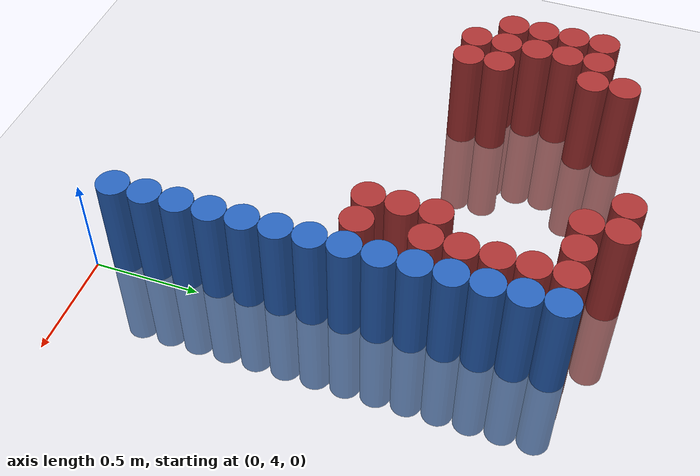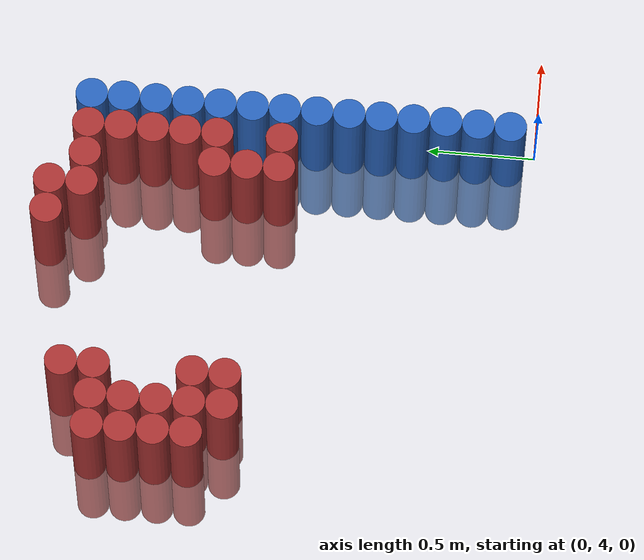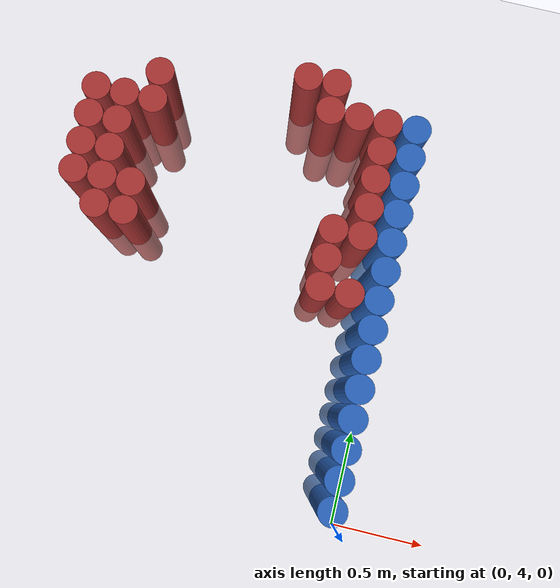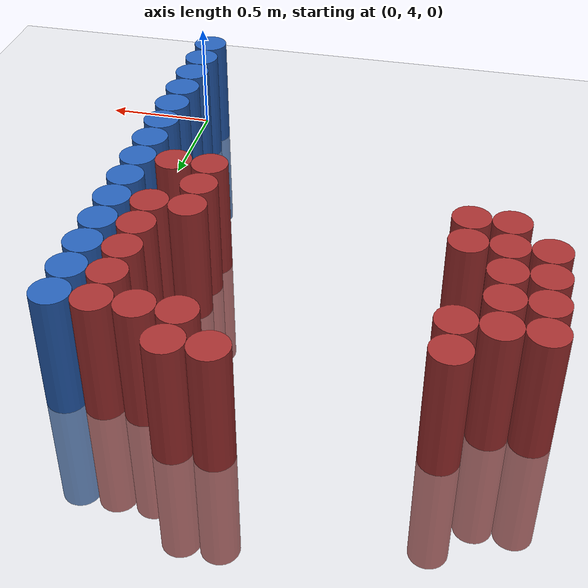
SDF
<sdf version="1.6">
 <world name="default">
  <model name="ground_plane">
   <static>1</static>
   <link name="link">
    <collision name="collision">
     <geometry><plane><normal>0 0 1</normal><size>100 100</size></plane></geometry>
     <surface><friction><ode><mu>100</mu><mu2>50</mu2></ode></friction></surface>
    </collision>
    <visual name="visual">
     <cast_shadows>0</cast_shadows>
     <geometry><plane><normal>0 0 1</normal><size>100 100</size></plane></geometry>
     <material>
      <script><uri>file://media/materials/scripts/gazebo.material</uri><name>Gazebo/Grey</name></script>
     </material>
    </visual>
   </link>
  </model>
  <model name="unit_cylinder_82">
   <static>1</static>
   <pose>-0.075000 4.125000 0.000000 0.000000 0.000000 0.000000</pose>
   <link name="link">
    <inertial>
     <mass>1</mass>
     <inertia><ixx>0.145833</ixx><ixy>0</ixy><ixz>0</ixz><iyy>0.145833</iyy><iyz>0</iyz><izz>0.125</izz></inertia>
    </inertial>
    <collision name="collision">
     <geometry><cylinder><radius>0.075000</radius><length>1</length></cylinder></geometry>
    </collision>
    <visual name="visual">
     <geometry><cylinder><radius>0.075000</radius><length>1</length></cylinder></geometry>
     <material>
      <ambient>0.152000 0.379000 0.720000 1</ambient>
      <diffuse>0.152000 0.379000 0.720000 1</diffuse>
     </material>
     <material>
      <script><name>Gazebo/Grey</name><uri>file://media/materials/scripts/gazebo.material</uri></script>
     </material>
    </visual>
    <sensor name="sensor_contact" type="contact"><contact><collision>collision</collision></contact></sensor>
   </link>
   <plugin filename="gz-sim-touchplugin-system" name="gz::sim::systems::TouchPlugin">
    <target>robot</target>
    <namespace>robot</namespace>
    <time>0.001</time>
    <enabled>true</enabled>
   </plugin>
  </model>
  <model name="unit_cylinder_84">
   <static>1</static>
   <pose>-0.075000 4.275000 0.000000 0.000000 0.000000 0.000000</pose>
   <link name="link">
    <inertial>
     <mass>1</mass>
     <inertia><ixx>0.145833</ixx><ixy>0</ixy><ixz>0</ixz><iyy>0.145833</iyy><iyz>0</iyz><izz>0.125</izz></inertia>
    </inertial>
    <collision name="collision">
     <geometry><cylinder><radius>0.075000</radius><length>1</length></cylinder></geometry>
    </collision>
    <visual name="visual">
     <geometry><cylinder><radius>0.075000</radius><length>1</length></cylinder></geometry>
     <material>
      <ambient>0.152000 0.379000 0.720000 1</ambient>
      <diffuse>0.152000 0.379000 0.720000 1</diffuse>
     </material>
     <material>
      <script><name>Gazebo/Grey</name><uri>file://media/materials/scripts/gazebo.material</uri></script>
     </material>
    </visual>
    <sensor name="sensor_contact" type="contact"><contact><collision>collision</collision></contact></sensor>
   </link>
   <plugin filename="gz-sim-touchplugin-system" name="gz::sim::systems::TouchPlugin">
    <target>robot</target>
    <namespace>robot</namespace>
    <time>0.001</time>
    <enabled>true</enabled>
   </plugin>
  </model>
  <model name="unit_cylinder_86">
   <static>1</static>
   <pose>-0.075000 4.425000 0.000000 0.000000 0.000000 0.000000</pose>
   <link name="link">
    <inertial>
     <mass>1</mass>
     <inertia><ixx>0.145833</ixx><ixy>0</ixy><ixz>0</ixz><iyy>0.145833</iyy><iyz>0</iyz><izz>0.125</izz></inertia>
    </inertial>
    <collision name="collision">
     <geometry><cylinder><radius>0.075000</radius><length>1</length></cylinder></geometry>
    </collision>
    <visual name="visual">
     <geometry><cylinder><radius>0.075000</radius><length>1</length></cylinder></geometry>
     <material>
      <ambient>0.152000 0.379000 0.720000 1</ambient>
      <diffuse>0.152000 0.379000 0.720000 1</diffuse>
     </material>
     <material>
      <script><name>Gazebo/Grey</name><uri>file://media/materials/scripts/gazebo.material</uri></script>
     </material>
    </visual>
    <sensor name="sensor_contact" type="contact"><contact><collision>collision</collision></contact></sensor>
   </link>
   <plugin filename="gz-sim-touchplugin-system" name="gz::sim::systems::TouchPlugin">
    <target>robot</target>
    <namespace>robot</namespace>
    <time>0.001</time>
    <enabled>true</enabled>
   </plugin>
  </model>
  <model name="unit_cylinder_88">
   <static>1</static>
   <pose>-0.075000 4.575000 0.000000 0.000000 0.000000 0.000000</pose>
   <link name="link">
    <inertial>
     <mass>1</mass>
     <inertia><ixx>0.145833</ixx><ixy>0</ixy><ixz>0</ixz><iyy>0.145833</iyy><iyz>0</iyz><izz>0.125</izz></inertia>
    </inertial>
    <collision name="collision">
     <geometry><cylinder><radius>0.075000</radius><length>1</length></cylinder></geometry>
    </collision>
    <visual name="visual">
     <geometry><cylinder><radius>0.075000</radius><length>1</length></cylinder></geometry>
     <material>
      <ambient>0.152000 0.379000 0.720000 1</ambient>
      <diffuse>0.152000 0.379000 0.720000 1</diffuse>
     </material>
     <material>
      <script><name>Gazebo/Grey</name><uri>file://media/materials/scripts/gazebo.material</uri></script>
     </material>
    </visual>
    <sensor name="sensor_contact" type="contact"><contact><collision>collision</collision></contact></sensor>
   </link>
   <plugin filename="gz-sim-touchplugin-system" name="gz::sim::systems::TouchPlugin">
    <target>robot</target>
    <namespace>robot</namespace>
    <time>0.001</time>
    <enabled>true</enabled>
   </plugin>
  </model>
  <model name="unit_cylinder_90">
   <static>1</static>
   <pose>-0.075000 4.725000 0.000000 0.000000 0.000000 0.000000</pose>
   <link name="link">
    <inertial>
     <mass>1</mass>
     <inertia><ixx>0.145833</ixx><ixy>0</ixy><ixz>0</ixz><iyy>0.145833</iyy><iyz>0</iyz><izz>0.125</izz></inertia>
    </inertial>
    <collision name="collision">
     <geometry><cylinder><radius>0.075000</radius><length>1</length></cylinder></geometry>
    </collision>
    <visual name="visual">
     <geometry><cylinder><radius>0.075000</radius><length>1</length></cylinder></geometry>
     <material>
      <ambient>0.152000 0.379000 0.720000 1</ambient>
      <diffuse>0.152000 0.379000 0.720000 1</diffuse>
     </material>
     <material>
      <script><name>Gazebo/Grey</name><uri>file://media/materials/scripts/gazebo.material</uri></script>
     </material>
    </visual>
    <sensor name="sensor_contact" type="contact"><contact><collision>collision</collision></contact></sensor>
   </link>
   <plugin filename="gz-sim-touchplugin-system" name="gz::sim::systems::TouchPlugin">
    <target>robot</target>
    <namespace>robot</namespace>
    <time>0.001</time>
    <enabled>true</enabled>
   </plugin>
  </model>
  <model name="unit_cylinder_92">
   <static>1</static>
   <pose>-0.075000 4.875000 0.000000 0.000000 0.000000 0.000000</pose>
   <link name="link">
    <inertial>
     <mass>1</mass>
     <inertia><ixx>0.145833</ixx><ixy>0</ixy><ixz>0</ixz><iyy>0.145833</iyy><iyz>0</iyz><izz>0.125</izz></inertia>
    </inertial>
    <collision name="collision">
     <geometry><cylinder><radius>0.075000</radius><length>1</length></cylinder></geometry>
    </collision>
    <visual name="visual">
     <geometry><cylinder><radius>0.075000</radius><length>1</length></cylinder></geometry>
     <material>
      <ambient>0.152000 0.379000 0.720000 1</ambient>
      <diffuse>0.152000 0.379000 0.720000 1</diffuse>
     </material>
     <material>
      <script><name>Gazebo/Grey</name><uri>file://media/materials/scripts/gazebo.material</uri></script>
     </material>
    </visual>
    <sensor name="sensor_contact" type="contact"><contact><collision>collision</collision></contact></sensor>
   </link>
   <plugin filename="gz-sim-touchplugin-system" name="gz::sim::systems::TouchPlugin">
    <target>robot</target>
    <namespace>robot</namespace>
    <time>0.001</time>
    <enabled>true</enabled>
   </plugin>
  </model>
  <model name="unit_cylinder_94">
   <static>1</static>
   <pose>-0.075000 5.025000 0.000000 0.000000 0.000000 0.000000</pose>
   <link name="link">
    <inertial>
     <mass>1</mass>
     <inertia><ixx>0.145833</ixx><ixy>0</ixy><ixz>0</ixz><iyy>0.145833</iyy><iyz>0</iyz><izz>0.125</izz></inertia>
    </inertial>
    <collision name="collision">
     <geometry><cylinder><radius>0.075000</radius><length>1</length></cylinder></geometry>
    </collision>
    <visual name="visual">
     <geometry><cylinder><radius>0.075000</radius><length>1</length></cylinder></geometry>
     <material>
      <ambient>0.152000 0.379000 0.720000 1</ambient>
      <diffuse>0.152000 0.379000 0.720000 1</diffuse>
     </material>
     <material>
      <script><name>Gazebo/Grey</name><uri>file://media/materials/scripts/gazebo.material</uri></script>
     </material>
    </visual>
    <sensor name="sensor_contact" type="contact"><contact><collision>collision</collision></contact></sensor>
   </link>
   <plugin filename="gz-sim-touchplugin-system" name="gz::sim::systems::TouchPlugin">
    <target>robot</target>
    <namespace>robot</namespace>
    <time>0.001</time>
    <enabled>true</enabled>
   </plugin>
  </model>
  <model name="unit_cylinder_231">
   <static>1</static>
   <pose>-1.725000 5.475000 0.000000 0.000000 0.000000 0.000000</pose>
   <link name="link">
    <inertial>
     <mass>1</mass>
     <inertia><ixx>0.145833</ixx><ixy>0</ixy><ixz>0</ixz><iyy>0.145833</iyy><iyz>0</iyz><izz>0.125</izz></inertia>
    </inertial>
    <collision name="collision">
     <geometry><cylinder><radius>0.075000</radius><length>1</length></cylinder></geometry>
    </collision>
    <visual name="visual">
     <geometry><cylinder><radius>0.075000</radius><length>1</length></cylinder></geometry>
     <material>
      <ambient>0.648000 0.192000 0.192000 1</ambient>
      <diffuse>0.648000 0.192000 0.192000 1</diffuse>
     </material>
     <material>
      <script><name>Gazebo/Grey</name><uri>file://media/materials/scripts/gazebo.material</uri></script>
     </material>
    </visual>
    <sensor name="sensor_contact" type="contact"><contact><collision>collision</collision></contact></sensor>
   </link>
   <plugin filename="gz-sim-touchplugin-system" name="gz::sim::systems::TouchPlugin">
    <target>robot</target>
    <namespace>robot</namespace>
    <time>0.001</time>
    <enabled>true</enabled>
   </plugin>
  </model>
  <model name="unit_cylinder_232">
   <static>1</static>
   <pose>-1.725000 5.625000 0.000000 0.000000 0.000000 0.000000</pose>
   <link name="link">
    <inertial>
     <mass>1</mass>
     <inertia><ixx>0.145833</ixx><ixy>0</ixy><ixz>0</ixz><iyy>0.145833</iyy><iyz>0</iyz><izz>0.125</izz></inertia>
    </inertial>
    <collision name="collision">
     <geometry><cylinder><radius>0.075000</radius><length>1</length></cylinder></geometry>
    </collision>
    <visual name="visual">
     <geometry><cylinder><radius>0.075000</radius><length>1</length></cylinder></geometry>
     <material>
      <ambient>0.648000 0.192000 0.192000 1</ambient>
      <diffuse>0.648000 0.192000 0.192000 1</diffuse>
     </material>
     <material>
      <script><name>Gazebo/Grey</name><uri>file://media/materials/scripts/gazebo.material</uri></script>
     </material>
    </visual>
    <sensor name="sensor_contact" type="contact"><contact><collision>collision</collision></contact></sensor>
   </link>
   <plugin filename="gz-sim-touchplugin-system" name="gz::sim::systems::TouchPlugin">
    <target>robot</target>
    <namespace>robot</namespace>
    <time>0.001</time>
    <enabled>true</enabled>
   </plugin>
  </model>
  <model name="unit_cylinder_233">
   <static>1</static>
   <pose>-1.725000 5.775000 0.000000 0.000000 0.000000 0.000000</pose>
   <link name="link">
    <inertial>
     <mass>1</mass>
     <inertia><ixx>0.145833</ixx><ixy>0</ixy><ixz>0</ixz><iyy>0.145833</iyy><iyz>0</iyz><izz>0.125</izz></inertia>
    </inertial>
    <collision name="collision">
     <geometry><cylinder><radius>0.075000</radius><length>1</length></cylinder></geometry>
    </collision>
    <visual name="visual">
     <geometry><cylinder><radius>0.075000</radius><length>1</length></cylinder></geometry>
     <material>
      <ambient>0.648000 0.192000 0.192000 1</ambient>
      <diffuse>0.648000 0.192000 0.192000 1</diffuse>
     </material>
     <material>
      <script><name>Gazebo/Grey</name><uri>file://media/materials/scripts/gazebo.material</uri></script>
     </material>
    </visual>
    <sensor name="sensor_contact" type="contact"><contact><collision>collision</collision></contact></sensor>
   </link>
   <plugin filename="gz-sim-touchplugin-system" name="gz::sim::systems::TouchPlugin">
    <target>robot</target>
    <namespace>robot</namespace>
    <time>0.001</time>
    <enabled>true</enabled>
   </plugin>
  </model>
  <model name="unit_cylinder_234">
   <static>1</static>
   <pose>-1.725000 5.925000 0.000000 0.000000 0.000000 0.000000</pose>
   <link name="link">
    <inertial>
     <mass>1</mass>
     <inertia><ixx>0.145833</ixx><ixy>0</ixy><ixz>0</ixz><iyy>0.145833</iyy><iyz>0</iyz><izz>0.125</izz></inertia>
    </inertial>
    <collision name="collision">
     <geometry><cylinder><radius>0.075000</radius><length>1</length></cylinder></geometry>
    </collision>
    <visual name="visual">
     <geometry><cylinder><radius>0.075000</radius><length>1</length></cylinder></geometry>
     <material>
      <ambient>0.648000 0.192000 0.192000 1</ambient>
      <diffuse>0.648000 0.192000 0.192000 1</diffuse>
     </material>
     <material>
      <script><name>Gazebo/Grey</name><uri>file://media/materials/scripts/gazebo.material</uri></script>
     </material>
    </visual>
    <sensor name="sensor_contact" type="contact"><contact><collision>collision</collision></contact></sensor>
   </link>
   <plugin filename="gz-sim-touchplugin-system" name="gz::sim::systems::TouchPlugin">
    <target>robot</target>
    <namespace>robot</namespace>
    <time>0.001</time>
    <enabled>true</enabled>
   </plugin>
  </model>
  <model name="unit_cylinder_241">
   <static>1</static>
   <pose>-1.575000 5.325000 0.000000 0.000000 0.000000 0.000000</pose>
   <link name="link">
    <inertial>
     <mass>1</mass>
     <inertia><ixx>0.145833</ixx><ixy>0</ixy><ixz>0</ixz><iyy>0.145833</iyy><iyz>0</iyz><izz>0.125</izz></inertia>
    </inertial>
    <collision name="collision">
     <geometry><cylinder><radius>0.075000</radius><length>1</length></cylinder></geometry>
    </collision>
    <visual name="visual">
     <geometry><cylinder><radius>0.075000</radius><length>1</length></cylinder></geometry>
     <material>
      <ambient>0.648000 0.192000 0.192000 1</ambient>
      <diffuse>0.648000 0.192000 0.192000 1</diffuse>
     </material>
     <material>
      <script><name>Gazebo/Grey</name><uri>file://media/materials/scripts/gazebo.material</uri></script>
     </material>
    </visual>
    <sensor name="sensor_contact" type="contact"><contact><collision>collision</collision></contact></sensor>
   </link>
   <plugin filename="gz-sim-touchplugin-system" name="gz::sim::systems::TouchPlugin">
    <target>robot</target>
    <namespace>robot</namespace>
    <time>0.001</time>
    <enabled>true</enabled>
   </plugin>
  </model>
  <model name="unit_cylinder_242">
   <static>1</static>
   <pose>-1.575000 5.475000 0.000000 0.000000 0.000000 0.000000</pose>
   <link name="link">
    <inertial>
     <mass>1</mass>
     <inertia><ixx>0.145833</ixx><ixy>0</ixy><ixz>0</ixz><iyy>0.145833</iyy><iyz>0</iyz><izz>0.125</izz></inertia>
    </inertial>
    <collision name="collision">
     <geometry><cylinder><radius>0.075000</radius><length>1</length></cylinder></geometry>
    </collision>
    <visual name="visual">
     <geometry><cylinder><radius>0.075000</radius><length>1</length></cylinder></geometry>
     <material>
      <ambient>0.648000 0.192000 0.192000 1</ambient>
      <diffuse>0.648000 0.192000 0.192000 1</diffuse>
     </material>
     <material>
      <script><name>Gazebo/Grey</name><uri>file://media/materials/scripts/gazebo.material</uri></script>
     </material>
    </visual>
    <sensor name="sensor_contact" type="contact"><contact><collision>collision</collision></contact></sensor>
   </link>
   <plugin filename="gz-sim-touchplugin-system" name="gz::sim::systems::TouchPlugin">
    <target>robot</target>
    <namespace>robot</namespace>
    <time>0.001</time>
    <enabled>true</enabled>
   </plugin>
  </model>
  <model name="unit_cylinder_243">
   <static>1</static>
   <pose>-1.575000 5.625000 0.000000 0.000000 0.000000 0.000000</pose>
   <link name="link">
    <inertial>
     <mass>1</mass>
     <inertia><ixx>0.145833</ixx><ixy>0</ixy><ixz>0</ixz><iyy>0.145833</iyy><iyz>0</iyz><izz>0.125</izz></inertia>
    </inertial>
    <collision name="collision">
     <geometry><cylinder><radius>0.075000</radius><length>1</length></cylinder></geometry>
    </collision>
    <visual name="visual">
     <geometry><cylinder><radius>0.075000</radius><length>1</length></cylinder></geometry>
     <material>
      <ambient>0.648000 0.192000 0.192000 1</ambient>
      <diffuse>0.648000 0.192000 0.192000 1</diffuse>
     </material>
     <material>
      <script><name>Gazebo/Grey</name><uri>file://media/materials/scripts/gazebo.material</uri></script>
     </material>
    </visual>
    <sensor name="sensor_contact" type="contact"><contact><collision>collision</collision></contact></sensor>
   </link>
   <plugin filename="gz-sim-touchplugin-system" name="gz::sim::systems::TouchPlugin">
    <target>robot</target>
    <namespace>robot</namespace>
    <time>0.001</time>
    <enabled>true</enabled>
   </plugin>
  </model>
  <model name="unit_cylinder_244">
   <static>1</static>
   <pose>-1.575000 5.775000 0.000000 0.000000 0.000000 0.000000</pose>
   <link name="link">
    <inertial>
     <mass>1</mass>
     <inertia><ixx>0.145833</ixx><ixy>0</ixy><ixz>0</ixz><iyy>0.145833</iyy><iyz>0</iyz><izz>0.125</izz></inertia>
    </inertial>
    <collision name="collision">
     <geometry><cylinder><radius>0.075000</radius><length>1</length></cylinder></geometry>
    </collision>
    <visual name="visual">
     <geometry><cylinder><radius>0.075000</radius><length>1</length></cylinder></geometry>
     <material>
      <ambient>0.648000 0.192000 0.192000 1</ambient>
      <diffuse>0.648000 0.192000 0.192000 1</diffuse>
     </material>
     <material>
      <script><name>Gazebo/Grey</name><uri>file://media/materials/scripts/gazebo.material</uri></script>
     </material>
    </visual>
    <sensor name="sensor_contact" type="contact"><contact><collision>collision</collision></contact></sensor>
   </link>
   <plugin filename="gz-sim-touchplugin-system" name="gz::sim::systems::TouchPlugin">
    <target>robot</target>
    <namespace>robot</namespace>
    <time>0.001</time>
    <enabled>true</enabled>
   </plugin>
  </model>
  <model name="unit_cylinder_245">
   <static>1</static>
   <pose>-1.575000 5.925000 0.000000 0.000000 0.000000 0.000000</pose>
   <link name="link">
    <inertial>
     <mass>1</mass>
     <inertia><ixx>0.145833</ixx><ixy>0</ixy><ixz>0</ixz><iyy>0.145833</iyy><iyz>0</iyz><izz>0.125</izz></inertia>
    </inertial>
    <collision name="collision">
     <geometry><cylinder><radius>0.075000</radius><length>1</length></cylinder></geometry>
    </collision>
    <visual name="visual">
     <geometry><cylinder><radius>0.075000</radius><length>1</length></cylinder></geometry>
     <material>
      <ambient>0.648000 0.192000 0.192000 1</ambient>
      <diffuse>0.648000 0.192000 0.192000 1</diffuse>
     </material>
     <material>
      <script><name>Gazebo/Grey</name><uri>file://media/materials/scripts/gazebo.material</uri></script>
     </material>
    </visual>
    <sensor name="sensor_contact" type="contact"><contact><collision>collision</collision></contact></sensor>
   </link>
   <plugin filename="gz-sim-touchplugin-system" name="gz::sim::systems::TouchPlugin">
    <target>robot</target>
    <namespace>robot</namespace>
    <time>0.001</time>
    <enabled>true</enabled>
   </plugin>
  </model>
  <model name="unit_cylinder_252">
   <static>1</static>
   <pose>-1.425000 5.325000 0.000000 0.000000 0.000000 0.000000</pose>
   <link name="link">
    <inertial>
     <mass>1</mass>
     <inertia><ixx>0.145833</ixx><ixy>0</ixy><ixz>0</ixz><iyy>0.145833</iyy><iyz>0</iyz><izz>0.125</izz></inertia>
    </inertial>
    <collision name="collision">
     <geometry><cylinder><radius>0.075000</radius><length>1</length></cylinder></geometry>
    </collision>
    <visual name="visual">
     <geometry><cylinder><radius>0.075000</radius><length>1</length></cylinder></geometry>
     <material>
      <ambient>0.648000 0.192000 0.192000 1</ambient>
      <diffuse>0.648000 0.192000 0.192000 1</diffuse>
     </material>
     <material>
      <script><name>Gazebo/Grey</name><uri>file://media/materials/scripts/gazebo.material</uri></script>
     </material>
    </visual>
    <sensor name="sensor_contact" type="contact"><contact><collision>collision</collision></contact></sensor>
   </link>
   <plugin filename="gz-sim-touchplugin-system" name="gz::sim::systems::TouchPlugin">
    <target>robot</target>
    <namespace>robot</namespace>
    <time>0.001</time>
    <enabled>true</enabled>
   </plugin>
  </model>
  <model name="unit_cylinder_253">
   <static>1</static>
   <pose>-1.425000 5.475000 0.000000 0.000000 0.000000 0.000000</pose>
   <link name="link">
    <inertial>
     <mass>1</mass>
     <inertia><ixx>0.145833</ixx><ixy>0</ixy><ixz>0</ixz><iyy>0.145833</iyy><iyz>0</iyz><izz>0.125</izz></inertia>
    </inertial>
    <collision name="collision">
     <geometry><cylinder><radius>0.075000</radius><length>1</length></cylinder></geometry>
    </collision>
    <visual name="visual">
     <geometry><cylinder><radius>0.075000</radius><length>1</length></cylinder></geometry>
     <material>
      <ambient>0.648000 0.192000 0.192000 1</ambient>
      <diffuse>0.648000 0.192000 0.192000 1</diffuse>
     </material>
     <material>
      <script><name>Gazebo/Grey</name><uri>file://media/materials/scripts/gazebo.material</uri></script>
     </material>
    </visual>
    <sensor name="sensor_contact" type="contact"><contact><collision>collision</collision></contact></sensor>
   </link>
   <plugin filename="gz-sim-touchplugin-system" name="gz::sim::systems::TouchPlugin">
    <target>robot</target>
    <namespace>robot</namespace>
    <time>0.001</time>
    <enabled>true</enabled>
   </plugin>
  </model>
  <model name="unit_cylinder_254">
   <static>1</static>
   <pose>-1.425000 5.925000 0.000000 0.000000 0.000000 0.000000</pose>
   <link name="link">
    <inertial>
     <mass>1</mass>
     <inertia><ixx>0.145833</ixx><ixy>0</ixy><ixz>0</ixz><iyy>0.145833</iyy><iyz>0</iyz><izz>0.125</izz></inertia>
    </inertial>
    <collision name="collision">
     <geometry><cylinder><radius>0.075000</radius><length>1</length></cylinder></geometry>
    </collision>
    <visual name="visual">
     <geometry><cylinder><radius>0.075000</radius><length>1</length></cylinder></geometry>
     <material>
      <ambient>0.648000 0.192000 0.192000 1</ambient>
      <diffuse>0.648000 0.192000 0.192000 1</diffuse>
     </material>
     <material>
      <script><name>Gazebo/Grey</name><uri>file://media/materials/scripts/gazebo.material</uri></script>
     </material>
    </visual>
    <sensor name="sensor_contact" type="contact"><contact><collision>collision</collision></contact></sensor>
   </link>
   <plugin filename="gz-sim-touchplugin-system" name="gz::sim::systems::TouchPlugin">
    <target>robot</target>
    <namespace>robot</namespace>
    <time>0.001</time>
    <enabled>true</enabled>
   </plugin>
  </model>
  <model name="unit_cylinder_255">
   <static>1</static>
   <pose>-1.425000 6.075000 0.000000 0.000000 0.000000 0.000000</pose>
   <link name="link">
    <inertial>
     <mass>1</mass>
     <inertia><ixx>0.145833</ixx><ixy>0</ixy><ixz>0</ixz><iyy>0.145833</iyy><iyz>0</iyz><izz>0.125</izz></inertia>
    </inertial>
    <collision name="collision">
     <geometry><cylinder><radius>0.075000</radius><length>1</length></cylinder></geometry>
    </collision>
    <visual name="visual">
     <geometry><cylinder><radius>0.075000</radius><length>1</length></cylinder></geometry>
     <material>
      <ambient>0.648000 0.192000 0.192000 1</ambient>
      <diffuse>0.648000 0.192000 0.192000 1</diffuse>
     </material>
     <material>
      <script><name>Gazebo/Grey</name><uri>file://media/materials/scripts/gazebo.material</uri></script>
     </material>
    </visual>
    <sensor name="sensor_contact" type="contact"><contact><collision>collision</collision></contact></sensor>
   </link>
   <plugin filename="gz-sim-touchplugin-system" name="gz::sim::systems::TouchPlugin">
    <target>robot</target>
    <namespace>robot</namespace>
    <time>0.001</time>
    <enabled>true</enabled>
   </plugin>
  </model>
  <model name="unit_cylinder_282">
   <static>1</static>
   <pose>-0.675000 6.225000 0.000000 0.000000 0.000000 0.000000</pose>
   <link name="link">
    <inertial>
     <mass>1</mass>
     <inertia><ixx>0.145833</ixx><ixy>0</ixy><ixz>0</ixz><iyy>0.145833</iyy><iyz>0</iyz><izz>0.125</izz></inertia>
    </inertial>
    <collision name="collision">
     <geometry><cylinder><radius>0.075000</radius><length>1</length></cylinder></geometry>
    </collision>
    <visual name="visual">
     <geometry><cylinder><radius>0.075000</radius><length>1</length></cylinder></geometry>
     <material>
      <ambient>0.648000 0.192000 0.192000 1</ambient>
      <diffuse>0.648000 0.192000 0.192000 1</diffuse>
     </material>
     <material>
      <script><name>Gazebo/Grey</name><uri>file://media/materials/scripts/gazebo.material</uri></script>
     </material>
    </visual>
    <sensor name="sensor_contact" type="contact"><contact><collision>collision</collision></contact></sensor>
   </link>
   <plugin filename="gz-sim-touchplugin-system" name="gz::sim::systems::TouchPlugin">
    <target>robot</target>
    <namespace>robot</namespace>
    <time>0.001</time>
    <enabled>true</enabled>
   </plugin>
  </model>
  <model name="unit_cylinder_293">
   <static>1</static>
   <pose>-0.525000 6.075000 0.000000 0.000000 0.000000 0.000000</pose>
   <link name="link">
    <inertial>
     <mass>1</mass>
     <inertia><ixx>0.145833</ixx><ixy>0</ixy><ixz>0</ixz><iyy>0.145833</iyy><iyz>0</iyz><izz>0.125</izz></inertia>
    </inertial>
    <collision name="collision">
     <geometry><cylinder><radius>0.075000</radius><length>1</length></cylinder></geometry>
    </collision>
    <visual name="visual">
     <geometry><cylinder><radius>0.075000</radius><length>1</length></cylinder></geometry>
     <material>
      <ambient>0.648000 0.192000 0.192000 1</ambient>
      <diffuse>0.648000 0.192000 0.192000 1</diffuse>
     </material>
     <material>
      <script><name>Gazebo/Grey</name><uri>file://media/materials/scripts/gazebo.material</uri></script>
     </material>
    </visual>
    <sensor name="sensor_contact" type="contact"><contact><collision>collision</collision></contact></sensor>
   </link>
   <plugin filename="gz-sim-touchplugin-system" name="gz::sim::systems::TouchPlugin">
    <target>robot</target>
    <namespace>robot</namespace>
    <time>0.001</time>
    <enabled>true</enabled>
   </plugin>
  </model>
  <model name="unit_cylinder_294">
   <static>1</static>
   <pose>-0.525000 6.225000 0.000000 0.000000 0.000000 0.000000</pose>
   <link name="link">
    <inertial>
     <mass>1</mass>
     <inertia><ixx>0.145833</ixx><ixy>0</ixy><ixz>0</ixz><iyy>0.145833</iyy><iyz>0</iyz><izz>0.125</izz></inertia>
    </inertial>
    <collision name="collision">
     <geometry><cylinder><radius>0.075000</radius><length>1</length></cylinder></geometry>
    </collision>
    <visual name="visual">
     <geometry><cylinder><radius>0.075000</radius><length>1</length></cylinder></geometry>
     <material>
      <ambient>0.648000 0.192000 0.192000 1</ambient>
      <diffuse>0.648000 0.192000 0.192000 1</diffuse>
     </material>
     <material>
      <script><name>Gazebo/Grey</name><uri>file://media/materials/scripts/gazebo.material</uri></script>
     </material>
    </visual>
    <sensor name="sensor_contact" type="contact"><contact><collision>collision</collision></contact></sensor>
   </link>
   <plugin filename="gz-sim-touchplugin-system" name="gz::sim::systems::TouchPlugin">
    <target>robot</target>
    <namespace>robot</namespace>
    <time>0.001</time>
    <enabled>true</enabled>
   </plugin>
  </model>
  <model name="unit_cylinder_305">
   <static>1</static>
   <pose>-0.375000 5.175000 0.000000 0.000000 0.000000 0.000000</pose>
   <link name="link">
    <inertial>
     <mass>1</mass>
     <inertia><ixx>0.145833</ixx><ixy>0</ixy><ixz>0</ixz><iyy>0.145833</iyy><iyz>0</iyz><izz>0.125</izz></inertia>
    </inertial>
    <collision name="collision">
     <geometry><cylinder><radius>0.075000</radius><length>1</length></cylinder></geometry>
    </collision>
    <visual name="visual">
     <geometry><cylinder><radius>0.075000</radius><length>1</length></cylinder></geometry>
     <material>
      <ambient>0.648000 0.192000 0.192000 1</ambient>
      <diffuse>0.648000 0.192000 0.192000 1</diffuse>
     </material>
     <material>
      <script><name>Gazebo/Grey</name><uri>file://media/materials/scripts/gazebo.material</uri></script>
     </material>
    </visual>
    <sensor name="sensor_contact" type="contact"><contact><collision>collision</collision></contact></sensor>
   </link>
   <plugin filename="gz-sim-touchplugin-system" name="gz::sim::systems::TouchPlugin">
    <target>robot</target>
    <namespace>robot</namespace>
    <time>0.001</time>
    <enabled>true</enabled>
   </plugin>
  </model>
  <model name="unit_cylinder_306">
   <static>1</static>
   <pose>-0.375000 5.325000 0.000000 0.000000 0.000000 0.000000</pose>
   <link name="link">
    <inertial>
     <mass>1</mass>
     <inertia><ixx>0.145833</ixx><ixy>0</ixy><ixz>0</ixz><iyy>0.145833</iyy><iyz>0</iyz><izz>0.125</izz></inertia>
    </inertial>
    <collision name="collision">
     <geometry><cylinder><radius>0.075000</radius><length>1</length></cylinder></geometry>
    </collision>
    <visual name="visual">
     <geometry><cylinder><radius>0.075000</radius><length>1</length></cylinder></geometry>
     <material>
      <ambient>0.648000 0.192000 0.192000 1</ambient>
      <diffuse>0.648000 0.192000 0.192000 1</diffuse>
     </material>
     <material>
      <script><name>Gazebo/Grey</name><uri>file://media/materials/scripts/gazebo.material</uri></script>
     </material>
    </visual>
    <sensor name="sensor_contact" type="contact"><contact><collision>collision</collision></contact></sensor>
   </link>
   <plugin filename="gz-sim-touchplugin-system" name="gz::sim::systems::TouchPlugin">
    <target>robot</target>
    <namespace>robot</namespace>
    <time>0.001</time>
    <enabled>true</enabled>
   </plugin>
  </model>
  <model name="unit_cylinder_307">
   <static>1</static>
   <pose>-0.375000 5.475000 0.000000 0.000000 0.000000 0.000000</pose>
   <link name="link">
    <inertial>
     <mass>1</mass>
     <inertia><ixx>0.145833</ixx><ixy>0</ixy><ixz>0</ixz><iyy>0.145833</iyy><iyz>0</iyz><izz>0.125</izz></inertia>
    </inertial>
    <collision name="collision">
     <geometry><cylinder><radius>0.075000</radius><length>1</length></cylinder></geometry>
    </collision>
    <visual name="visual">
     <geometry><cylinder><radius>0.075000</radius><length>1</length></cylinder></geometry>
     <material>
      <ambient>0.648000 0.192000 0.192000 1</ambient>
      <diffuse>0.648000 0.192000 0.192000 1</diffuse>
     </material>
     <material>
      <script><name>Gazebo/Grey</name><uri>file://media/materials/scripts/gazebo.material</uri></script>
     </material>
    </visual>
    <sensor name="sensor_contact" type="contact"><contact><collision>collision</collision></contact></sensor>
   </link>
   <plugin filename="gz-sim-touchplugin-system" name="gz::sim::systems::TouchPlugin">
    <target>robot</target>
    <namespace>robot</namespace>
    <time>0.001</time>
    <enabled>true</enabled>
   </plugin>
  </model>
  <model name="unit_cylinder_308">
   <static>1</static>
   <pose>-0.375000 6.075000 0.000000 0.000000 0.000000 0.000000</pose>
   <link name="link">
    <inertial>
     <mass>1</mass>
     <inertia><ixx>0.145833</ixx><ixy>0</ixy><ixz>0</ixz><iyy>0.145833</iyy><iyz>0</iyz><izz>0.125</izz></inertia>
    </inertial>
    <collision name="collision">
     <geometry><cylinder><radius>0.075000</radius><length>1</length></cylinder></geometry>
    </collision>
    <visual name="visual">
     <geometry><cylinder><radius>0.075000</radius><length>1</length></cylinder></geometry>
     <material>
      <ambient>0.648000 0.192000 0.192000 1</ambient>
      <diffuse>0.648000 0.192000 0.192000 1</diffuse>
     </material>
     <material>
      <script><name>Gazebo/Grey</name><uri>file://media/materials/scripts/gazebo.material</uri></script>
     </material>
    </visual>
    <sensor name="sensor_contact" type="contact"><contact><collision>collision</collision></contact></sensor>
   </link>
   <plugin filename="gz-sim-touchplugin-system" name="gz::sim::systems::TouchPlugin">
    <target>robot</target>
    <namespace>robot</namespace>
    <time>0.001</time>
    <enabled>true</enabled>
   </plugin>
  </model>
  <model name="unit_cylinder_320">
   <static>1</static>
   <pose>-0.225000 5.175000 0.000000 0.000000 0.000000 0.000000</pose>
   <link name="link">
    <inertial>
     <mass>1</mass>
     <inertia><ixx>0.145833</ixx><ixy>0</ixy><ixz>0</ixz><iyy>0.145833</iyy><iyz>0</iyz><izz>0.125</izz></inertia>
    </inertial>
    <collision name="collision">
     <geometry><cylinder><radius>0.075000</radius><length>1</length></cylinder></geometry>
    </collision>
    <visual name="visual">
     <geometry><cylinder><radius>0.075000</radius><length>1</length></cylinder></geometry>
     <material>
      <ambient>0.648000 0.192000 0.192000 1</ambient>
      <diffuse>0.648000 0.192000 0.192000 1</diffuse>
     </material>
     <material>
      <script><name>Gazebo/Grey</name><uri>file://media/materials/scripts/gazebo.material</uri></script>
     </material>
    </visual>
    <sensor name="sensor_contact" type="contact"><contact><collision>collision</collision></contact></sensor>
   </link>
   <plugin filename="gz-sim-touchplugin-system" name="gz::sim::systems::TouchPlugin">
    <target>robot</target>
    <namespace>robot</namespace>
    <time>0.001</time>
    <enabled>true</enabled>
   </plugin>
  </model>
  <model name="unit_cylinder_321">
   <static>1</static>
   <pose>-0.225000 5.475000 0.000000 0.000000 0.000000 0.000000</pose>
   <link name="link">
    <inertial>
     <mass>1</mass>
     <inertia><ixx>0.145833</ixx><ixy>0</ixy><ixz>0</ixz><iyy>0.145833</iyy><iyz>0</iyz><izz>0.125</izz></inertia>
    </inertial>
    <collision name="collision">
     <geometry><cylinder><radius>0.075000</radius><length>1</length></cylinder></geometry>
    </collision>
    <visual name="visual">
     <geometry><cylinder><radius>0.075000</radius><length>1</length></cylinder></geometry>
     <material>
      <ambient>0.648000 0.192000 0.192000 1</ambient>
      <diffuse>0.648000 0.192000 0.192000 1</diffuse>
     </material>
     <material>
      <script><name>Gazebo/Grey</name><uri>file://media/materials/scripts/gazebo.material</uri></script>
     </material>
    </visual>
    <sensor name="sensor_contact" type="contact"><contact><collision>collision</collision></contact></sensor>
   </link>
   <plugin filename="gz-sim-touchplugin-system" name="gz::sim::systems::TouchPlugin">
    <target>robot</target>
    <namespace>robot</namespace>
    <time>0.001</time>
    <enabled>true</enabled>
   </plugin>
  </model>
  <model name="unit_cylinder_322">
   <static>1</static>
   <pose>-0.225000 5.625000 0.000000 0.000000 0.000000 0.000000</pose>
   <link name="link">
    <inertial>
     <mass>1</mass>
     <inertia><ixx>0.145833</ixx><ixy>0</ixy><ixz>0</ixz><iyy>0.145833</iyy><iyz>0</iyz><izz>0.125</izz></inertia>
    </inertial>
    <collision name="collision">
     <geometry><cylinder><radius>0.075000</radius><length>1</length></cylinder></geometry>
    </collision>
    <visual name="visual">
     <geometry><cylinder><radius>0.075000</radius><length>1</length></cylinder></geometry>
     <material>
      <ambient>0.648000 0.192000 0.192000 1</ambient>
      <diffuse>0.648000 0.192000 0.192000 1</diffuse>
     </material>
     <material>
      <script><name>Gazebo/Grey</name><uri>file://media/materials/scripts/gazebo.material</uri></script>
     </material>
    </visual>
    <sensor name="sensor_contact" type="contact"><contact><collision>collision</collision></contact></sensor>
   </link>
   <plugin filename="gz-sim-touchplugin-system" name="gz::sim::systems::TouchPlugin">
    <target>robot</target>
    <namespace>robot</namespace>
    <time>0.001</time>
    <enabled>true</enabled>
   </plugin>
  </model>
  <model name="unit_cylinder_323">
   <static>1</static>
   <pose>-0.225000 5.775000 0.000000 0.000000 0.000000 0.000000</pose>
   <link name="link">
    <inertial>
     <mass>1</mass>
     <inertia><ixx>0.145833</ixx><ixy>0</ixy><ixz>0</ixz><iyy>0.145833</iyy><iyz>0</iyz><izz>0.125</izz></inertia>
    </inertial>
    <collision name="collision">
     <geometry><cylinder><radius>0.075000</radius><length>1</length></cylinder></geometry>
    </collision>
    <visual name="visual">
     <geometry><cylinder><radius>0.075000</radius><length>1</length></cylinder></geometry>
     <material>
      <ambient>0.648000 0.192000 0.192000 1</ambient>
      <diffuse>0.648000 0.192000 0.192000 1</diffuse>
     </material>
     <material>
      <script><name>Gazebo/Grey</name><uri>file://media/materials/scripts/gazebo.material</uri></script>
     </material>
    </visual>
    <sensor name="sensor_contact" type="contact"><contact><collision>collision</collision></contact></sensor>
   </link>
   <plugin filename="gz-sim-touchplugin-system" name="gz::sim::systems::TouchPlugin">
    <target>robot</target>
    <namespace>robot</namespace>
    <time>0.001</time>
    <enabled>true</enabled>
   </plugin>
  </model>
  <model name="unit_cylinder_324">
   <static>1</static>
   <pose>-0.225000 5.925000 0.000000 0.000000 0.000000 0.000000</pose>
   <link name="link">
    <inertial>
     <mass>1</mass>
     <inertia><ixx>0.145833</ixx><ixy>0</ixy><ixz>0</ixz><iyy>0.145833</iyy><iyz>0</iyz><izz>0.125</izz></inertia>
    </inertial>
    <collision name="collision">
     <geometry><cylinder><radius>0.075000</radius><length>1</length></cylinder></geometry>
    </collision>
    <visual name="visual">
     <geometry><cylinder><radius>0.075000</radius><length>1</length></cylinder></geometry>
     <material>
      <ambient>0.648000 0.192000 0.192000 1</ambient>
      <diffuse>0.648000 0.192000 0.192000 1</diffuse>
     </material>
     <material>
      <script><name>Gazebo/Grey</name><uri>file://media/materials/scripts/gazebo.material</uri></script>
     </material>
    </visual>
    <sensor name="sensor_contact" type="contact"><contact><collision>collision</collision></contact></sensor>
   </link>
   <plugin filename="gz-sim-touchplugin-system" name="gz::sim::systems::TouchPlugin">
    <target>robot</target>
    <namespace>robot</namespace>
    <time>0.001</time>
    <enabled>true</enabled>
   </plugin>
  </model>
  <model name="unit_cylinder_325">
   <static>1</static>
   <pose>-0.225000 6.075000 0.000000 0.000000 0.000000 0.000000</pose>
   <link name="link">
    <inertial>
     <mass>1</mass>
     <inertia><ixx>0.145833</ixx><ixy>0</ixy><ixz>0</ixz><iyy>0.145833</iyy><iyz>0</iyz><izz>0.125</izz></inertia>
    </inertial>
    <collision name="collision">
     <geometry><cylinder><radius>0.075000</radius><length>1</length></cylinder></geometry>
    </collision>
    <visual name="visual">
     <geometry><cylinder><radius>0.075000</radius><length>1</length></cylinder></geometry>
     <material>
      <ambient>0.648000 0.192000 0.192000 1</ambient>
      <diffuse>0.648000 0.192000 0.192000 1</diffuse>
     </material>
     <material>
      <script><name>Gazebo/Grey</name><uri>file://media/materials/scripts/gazebo.material</uri></script>
     </material>
    </visual>
    <sensor name="sensor_contact" type="contact"><contact><collision>collision</collision></contact></sensor>
   </link>
   <plugin filename="gz-sim-touchplugin-system" name="gz::sim::systems::TouchPlugin">
    <target>robot</target>
    <namespace>robot</namespace>
    <time>0.001</time>
    <enabled>true</enabled>
   </plugin>
  </model>
  <model name="unit_cylinder_335">
   <static>1</static>
   <pose>-0.075000 5.175000 0.000000 0.000000 0.000000 0.000000</pose>
   <link name="link">
    <inertial>
     <mass>1</mass>
     <inertia><ixx>0.145833</ixx><ixy>0</ixy><ixz>0</ixz><iyy>0.145833</iyy><iyz>0</iyz><izz>0.125</izz></inertia>
    </inertial>
    <collision name="collision">
     <geometry><cylinder><radius>0.075000</radius><length>1</length></cylinder></geometry>
    </collision>
    <visual name="visual">
     <geometry><cylinder><radius>0.075000</radius><length>1</length></cylinder></geometry>
     <material>
      <ambient>0.152000 0.379000 0.720000 1</ambient>
      <diffuse>0.152000 0.379000 0.720000 1</diffuse>
     </material>
     <material>
      <script><name>Gazebo/Grey</name><uri>file://media/materials/scripts/gazebo.material</uri></script>
     </material>
    </visual>
    <sensor name="sensor_contact" type="contact"><contact><collision>collision</collision></contact></sensor>
   </link>
   <plugin filename="gz-sim-touchplugin-system" name="gz::sim::systems::TouchPlugin">
    <target>robot</target>
    <namespace>robot</namespace>
    <time>0.001</time>
    <enabled>true</enabled>
   </plugin>
  </model>
  <model name="unit_cylinder_336">
   <static>1</static>
   <pose>-0.075000 5.325000 0.000000 0.000000 0.000000 0.000000</pose>
   <link name="link">
    <inertial>
     <mass>1</mass>
     <inertia><ixx>0.145833</ixx><ixy>0</ixy><ixz>0</ixz><iyy>0.145833</iyy><iyz>0</iyz><izz>0.125</izz></inertia>
    </inertial>
    <collision name="collision">
     <geometry><cylinder><radius>0.075000</radius><length>1</length></cylinder></geometry>
    </collision>
    <visual name="visual">
     <geometry><cylinder><radius>0.075000</radius><length>1</length></cylinder></geometry>
     <material>
      <ambient>0.152000 0.379000 0.720000 1</ambient>
      <diffuse>0.152000 0.379000 0.720000 1</diffuse>
     </material>
     <material>
      <script><name>Gazebo/Grey</name><uri>file://media/materials/scripts/gazebo.material</uri></script>
     </material>
    </visual>
    <sensor name="sensor_contact" type="contact"><contact><collision>collision</collision></contact></sensor>
   </link>
   <plugin filename="gz-sim-touchplugin-system" name="gz::sim::systems::TouchPlugin">
    <target>robot</target>
    <namespace>robot</namespace>
    <time>0.001</time>
    <enabled>true</enabled>
   </plugin>
  </model>
  <model name="unit_cylinder_337">
   <static>1</static>
   <pose>-0.075000 5.475000 0.000000 0.000000 0.000000 0.000000</pose>
   <link name="link">
    <inertial>
     <mass>1</mass>
     <inertia><ixx>0.145833</ixx><ixy>0</ixy><ixz>0</ixz><iyy>0.145833</iyy><iyz>0</iyz><izz>0.125</izz></inertia>
    </inertial>
    <collision name="collision">
     <geometry><cylinder><radius>0.075000</radius><length>1</length></cylinder></geometry>
    </collision>
    <visual name="visual">
     <geometry><cylinder><radius>0.075000</radius><length>1</length></cylinder></geometry>
     <material>
      <ambient>0.152000 0.379000 0.720000 1</ambient>
      <diffuse>0.152000 0.379000 0.720000 1</diffuse>
     </material>
     <material>
      <script><name>Gazebo/Grey</name><uri>file://media/materials/scripts/gazebo.material</uri></script>
     </material>
    </visual>
    <sensor name="sensor_contact" type="contact"><contact><collision>collision</collision></contact></sensor>
   </link>
   <plugin filename="gz-sim-touchplugin-system" name="gz::sim::systems::TouchPlugin">
    <target>robot</target>
    <namespace>robot</namespace>
    <time>0.001</time>
    <enabled>true</enabled>
   </plugin>
  </model>
  <model name="unit_cylinder_338">
   <static>1</static>
   <pose>-0.075000 5.625000 0.000000 0.000000 0.000000 0.000000</pose>
   <link name="link">
    <inertial>
     <mass>1</mass>
     <inertia><ixx>0.145833</ixx><ixy>0</ixy><ixz>0</ixz><iyy>0.145833</iyy><iyz>0</iyz><izz>0.125</izz></inertia>
    </inertial>
    <collision name="collision">
     <geometry><cylinder><radius>0.075000</radius><length>1</length></cylinder></geometry>
    </collision>
    <visual name="visual">
     <geometry><cylinder><radius>0.075000</radius><length>1</length></cylinder></geometry>
     <material>
      <ambient>0.152000 0.379000 0.720000 1</ambient>
      <diffuse>0.152000 0.379000 0.720000 1</diffuse>
     </material>
     <material>
      <script><name>Gazebo/Grey</name><uri>file://media/materials/scripts/gazebo.material</uri></script>
     </material>
    </visual>
    <sensor name="sensor_contact" type="contact"><contact><collision>collision</collision></contact></sensor>
   </link>
   <plugin filename="gz-sim-touchplugin-system" name="gz::sim::systems::TouchPlugin">
    <target>robot</target>
    <namespace>robot</namespace>
    <time>0.001</time>
    <enabled>true</enabled>
   </plugin>
  </model>
  <model name="unit_cylinder_339">
   <static>1</static>
   <pose>-0.075000 5.775000 0.000000 0.000000 0.000000 0.000000</pose>
   <link name="link">
    <inertial>
     <mass>1</mass>
     <inertia><ixx>0.145833</ixx><ixy>0</ixy><ixz>0</ixz><iyy>0.145833</iyy><iyz>0</iyz><izz>0.125</izz></inertia>
    </inertial>
    <collision name="collision">
     <geometry><cylinder><radius>0.075000</radius><length>1</length></cylinder></geometry>
    </collision>
    <visual name="visual">
     <geometry><cylinder><radius>0.075000</radius><length>1</length></cylinder></geometry>
     <material>
      <ambient>0.152000 0.379000 0.720000 1</ambient>
      <diffuse>0.152000 0.379000 0.720000 1</diffuse>
     </material>
     <material>
      <script><name>Gazebo/Grey</name><uri>file://media/materials/scripts/gazebo.material</uri></script>
     </material>
    </visual>
    <sensor name="sensor_contact" type="contact"><contact><collision>collision</collision></contact></sensor>
   </link>
   <plugin filename="gz-sim-touchplugin-system" name="gz::sim::systems::TouchPlugin">
    <target>robot</target>
    <namespace>robot</namespace>
    <time>0.001</time>
    <enabled>true</enabled>
   </plugin>
  </model>
  <model name="unit_cylinder_340">
   <static>1</static>
   <pose>-0.075000 5.925000 0.000000 0.000000 0.000000 0.000000</pose>
   <link name="link">
    <inertial>
     <mass>1</mass>
     <inertia><ixx>0.145833</ixx><ixy>0</ixy><ixz>0</ixz><iyy>0.145833</iyy><iyz>0</iyz><izz>0.125</izz></inertia>
    </inertial>
    <collision name="collision">
     <geometry><cylinder><radius>0.075000</radius><length>1</length></cylinder></geometry>
    </collision>
    <visual name="visual">
     <geometry><cylinder><radius>0.075000</radius><length>1</length></cylinder></geometry>
     <material>
      <ambient>0.152000 0.379000 0.720000 1</ambient>
      <diffuse>0.152000 0.379000 0.720000 1</diffuse>
     </material>
     <material>
      <script><name>Gazebo/Grey</name><uri>file://media/materials/scripts/gazebo.material</uri></script>
     </material>
    </visual>
    <sensor name="sensor_contact" type="contact"><contact><collision>collision</collision></contact></sensor>
   </link>
   <plugin filename="gz-sim-touchplugin-system" name="gz::sim::systems::TouchPlugin">
    <target>robot</target>
    <namespace>robot</namespace>
    <time>0.001</time>
    <enabled>true</enabled>
   </plugin>
  </model>
  <model name="unit_cylinder_341">
   <static>1</static>
   <pose>-0.075000 6.075000 0.000000 0.000000 0.000000 0.000000</pose>
   <link name="link">
    <inertial>
     <mass>1</mass>
     <inertia><ixx>0.145833</ixx><ixy>0</ixy><ixz>0</ixz><iyy>0.145833</iyy><iyz>0</iyz><izz>0.125</izz></inertia>
    </inertial>
    <collision name="collision">
     <geometry><cylinder><radius>0.075000</radius><length>1</length></cylinder></geometry>
    </collision>
    <visual name="visual">
     <geometry><cylinder><radius>0.075000</radius><length>1</length></cylinder></geometry>
     <material>
      <ambient>0.152000 0.379000 0.720000 1</ambient>
      <diffuse>0.152000 0.379000 0.720000 1</diffuse>
     </material>
     <material>
      <script><name>Gazebo/Grey</name><uri>file://media/materials/scripts/gazebo.material</uri></script>
     </material>
    </visual>
    <sensor name="sensor_contact" type="contact"><contact><collision>collision</collision></contact></sensor>
   </link>
   <plugin filename="gz-sim-touchplugin-system" name="gz::sim::systems::TouchPlugin">
    <target>robot</target>
    <namespace>robot</namespace>
    <time>0.001</time>
    <enabled>true</enabled>
   </plugin>
  </model>
 </world>
</sdf>
